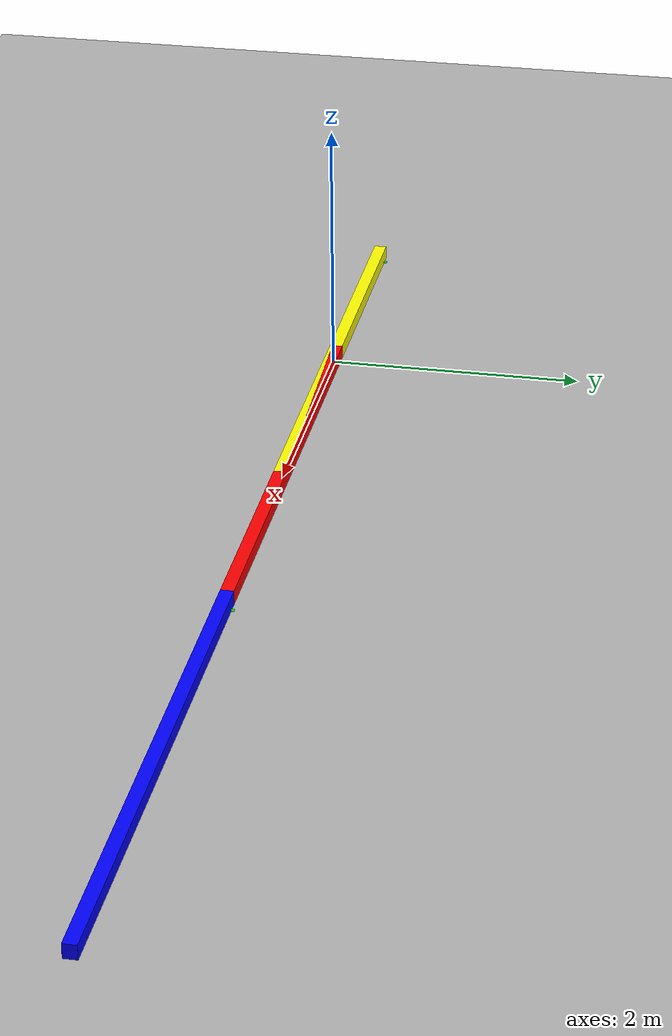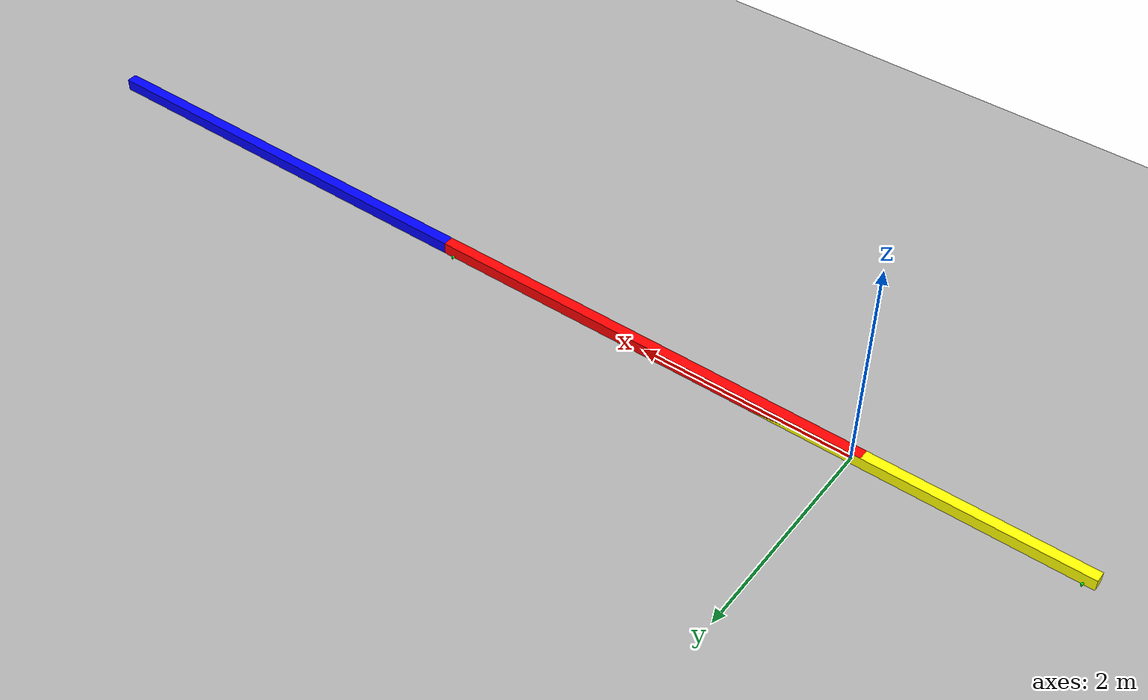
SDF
<?xml version="1.0"?>
<sdf version="1.9">
  <world name="world">
    <!-- Define gravity and physics properties -->
    <gravity>0 0 -9.81</gravity>
    <physics name="default_physics" type="ode">
      <max_step_size>0.001</max_step_size>
      <real_time_factor>1</real_time_factor>
    </physics>

    <!-- Simple ground plane for visualization -->
    <model name="ground_plane">
      <static>true</static>
      <link name="ground_link">
        <collision name="ground_collision">
          <geometry>
            <plane>
              <normal>0 0 1</normal>
            </plane>
          </geometry>
        </collision>
        <visual name="ground_visual">
          <geometry>
            <plane>
              <normal>0 0 1</normal>
              <size>50 50</size>
            </plane>
          </geometry>
          <material>
            <ambient>0.7 0.7 0.7 1</ambient>
            <diffuse>0.7 0.7 0.7 1</diffuse>
          </material>
        </visual>
      </link>
    </model>

    <!-- Four-bar linkage model -->
    <model name="four_bar_linkage">
      <!-- Link A (Crank) attached to the world -->
      <link name="A">
        <pose>0 0 0 0 0 0</pose>
        <inertial>
          <!-- Center of mass at the midpoint of the link -->
          <pose>2 0 0 0 0 0</pose>
          <mass>20</mass>
          <inertia>
            <ixx>0.08333</ixx>
            <iyy>29.46667</iyy>
            <izz>29.41667</izz>
            <ixy>0</ixy>
            <ixz>0</ixz>
            <iyz>0</iyz>
          </inertia>
        </inertial>
        <visual name="A_visual">
          <!-- A red box aligned along the x-axis -->
          <pose>2 0 0 0 0 0</pose>
          <geometry>
            <box>
              <size>4.2 0.1 0.2</size>
            </box>
          </geometry>
          <material>
            <diffuse>1 0 0 1</diffuse>
          </material>
        </visual>
        <!-- A small cylinder to represent the revolute pivot -->
        <visual name="A_pivot_visual">
          <pose>0 0 0 1.5708 0 0</pose>
          <geometry>
            <cylinder>
              <radius>0.01</radius>
              <length>0.15</length>
            </cylinder>
          </geometry>
          <material>
            <diffuse>0 1 0 1</diffuse>
          </material>
        </visual>
      </link>

      <!-- Link B (Coupler) -->
      <link name="B">
        <!-- Pose is defined relative to link A -->
        <pose relative_to="A">4 0 0 0 0 0</pose>
        <inertial>
          <pose>2 0 0 0 0 0</pose>
          <mass>20</mass>
          <inertia>
            <ixx>0.08333</ixx>
            <iyy>29.46667</iyy>
            <izz>29.41667</izz>
            <ixy>0</ixy>
            <ixz>0</ixz>
            <iyz>0</iyz>
          </inertia>
        </inertial>
        <visual name="B_visual">
          <pose>2 0 0 0 0 0</pose>
          <geometry>
            <box>
              <size>4.2 0.1 0.2</size>
            </box>
          </geometry>
          <material>
            <diffuse>0 0 1 1</diffuse>
          </material>
        </visual>
        <!-- Visual pivot between A and B -->
        <visual name="B_pivot_visual">
          <pose>0 0 0 1.5708 0 0</pose>
          <geometry>
            <cylinder>
              <radius>0.01</radius>
              <length>0.15</length>
            </cylinder>
          </geometry>
          <material>
            <diffuse>0 1 0 1</diffuse>
          </material>
        </visual>
        <!-- Frame for bushing connection on link B -->
        <frame name="B_bushing" attached_to="B">
          <!-- Place at the end of B along the x-axis and rotate so that the bushing z-axis avoids gimbal lock -->
          <pose relative_to="B">4 0 0 -1.5708 0 0</pose>
        </frame>
      </link>

      <!-- Link C (Rocker) attached to the world -->
      <link name="C">
        <!-- Pose of C in the world (offset so that the four-bar loop can close) -->
        <pose>-2 0 0 0 0 0</pose>
        <inertial>
          <pose>2 0 0 0 0 0</pose>
          <mass>20</mass>
          <inertia>
            <ixx>0.08333</ixx>
            <iyy>29.46667</iyy>
            <izz>29.41667</izz>
            <ixy>0</ixy>
            <ixz>0</ixz>
            <iyz>0</iyz>
          </inertia>
        </inertial>
        <visual name="C_visual">
          <pose>2 0 0 0 0 0</pose>
          <geometry>
            <box>
              <size>4.2 0.1 0.2</size>
            </box>
          </geometry>
          <material>
            <diffuse>1 1 0 1</diffuse>
          </material>
        </visual>
        <!-- Visual pivot for C -->
        <visual name="C_pivot_visual">
          <pose>0 0 0 1.5708 0 0</pose>
          <geometry>
            <cylinder>
              <radius>0.01</radius>
              <length>0.15</length>
            </cylinder>
          </geometry>
          <material>
            <diffuse>0 1 0 1</diffuse>
          </material>
        </visual>
        <!-- Frame for bushing connection on link C -->
        <frame name="C_bushing" attached_to="C">
          <!-- Place at the end of C along the x-axis with a rotation similar to B_bushing -->
          <pose relative_to="C">4 0 0 -1.5708 0 0</pose>
        </frame>
      </link>

      <!-- Revolute joints -->
      <!-- Joint connecting world to Link A -->
      <joint name="joint_WA" type="revolute">
        <parent>world</parent>
        <child>A</child>
        <pose>0 0 0 0 0 0</pose>
        <axis>
          <xyz>0 1 0</xyz>
          <limit/>
          <dynamics>
            <damping>0.0</damping>
          </dynamics>
        </axis>
      </joint>

      <!-- Joint connecting Link A to Link B -->
      <joint name="joint_AB" type="revolute">
        <parent>A</parent>
        <child>B</child>
        <!-- Place the joint at the end of A (i.e. at x=4 in A’s frame) -->
        <pose relative_to="A">4 0 0 0 0 0</pose>
        <axis>
          <xyz>0 1 0</xyz>
          <limit>
            <!-- Zero effort indicates an unactuated joint -->
            <effort>0</effort>
          </limit>
          <dynamics>
            <damping>0.0</damping>
          </dynamics>
        </axis>
      </joint>

      <!-- Joint connecting world to Link C -->
      <joint name="joint_WC" type="revolute">
        <parent>world</parent>
        <child>C</child>
        <pose>-2 0 0 0 0 0</pose>
        <axis>
          <xyz>0 1 0</xyz>
          <limit>
            <effort>0</effort>
          </limit>
          <dynamics>
            <damping>0.0</damping>
          </dynamics>
        </axis>
      </joint>

    </model>

    <!-- Optional light for better visualization -->
    <light type="directional" name="sun">
      <pose>0 0 10 0 0 0</pose>
      <diffuse>0.8 0.8 0.8 1</diffuse>
      <specular>0.2 0.2 0.2 1</specular>
      <attenuation>
        <range>1000</range>
        <constant>0.9</constant>
        <linear>0.01</linear>
        <quadratic>0.001</quadratic>
      </attenuation>
      <direction>-0.5 0.1 -0.9</direction>
    </light>
  </world>
</sdf>
